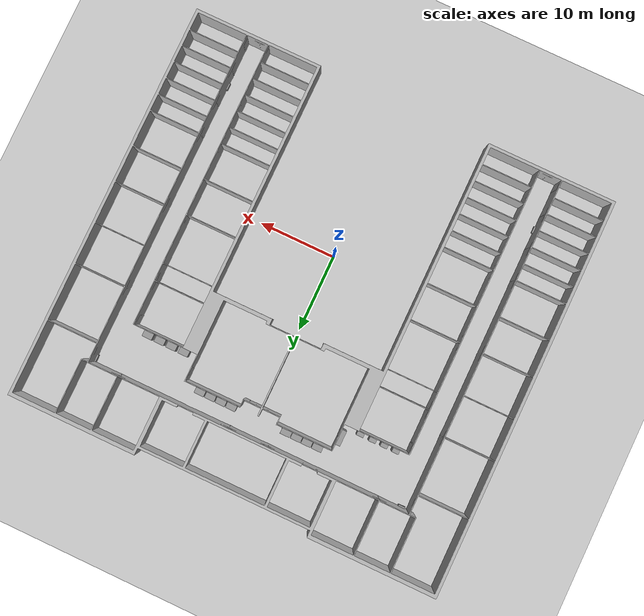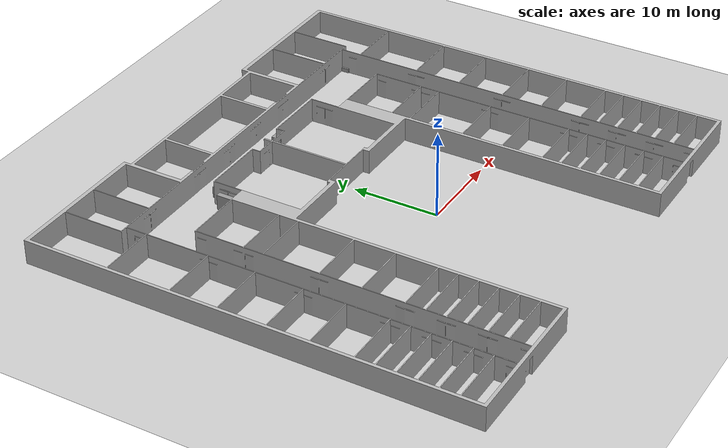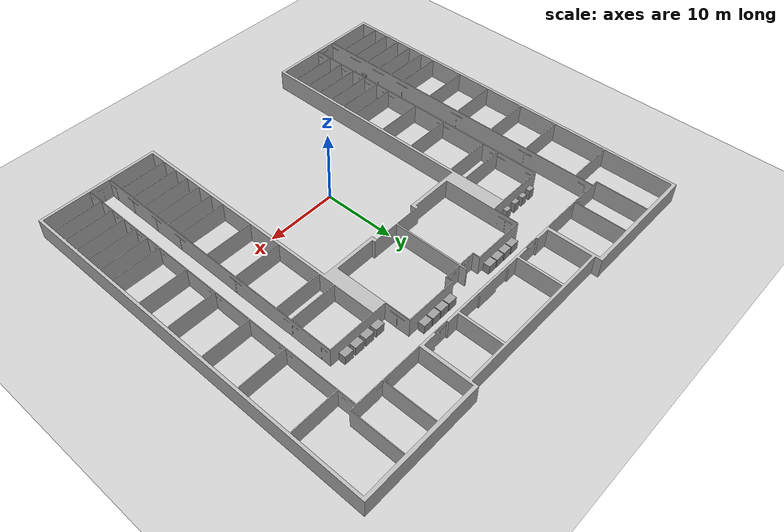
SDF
<sdf version="1.6">
 <world name="default">
  <light name="sun" type="directional">
   <pose>0 0 10 0 -0 0</pose>
   <diffuse>0.8 0.8 0.8 1</diffuse>
   <specular>0.2 0.2 0.2 1</specular>
   <attenuation>
    <range>1000</range>
    <constant>0.9</constant>
    <linear>0.01</linear>
    <quadratic>0.001</quadratic>
   </attenuation>
   <direction>-0.5 0.1 -0.9</direction>
  </light>
  <model name="ground_plane">
   <static>1</static>
   <link name="link">
    <collision name="collision">
     <geometry><plane><normal>0 0 1</normal><size>100 100</size></plane></geometry>
     <surface>
      <contact><collide_bitmask>65535</collide_bitmask></contact>
      <friction><ode><mu>100</mu><mu2>50</mu2></ode></friction>
     </surface>
    </collision>
    <visual name="visual">
     <cast_shadows>0</cast_shadows>
     <geometry><plane><normal>0 0 1</normal><size>100 100</size></plane></geometry>
     <material>
      <script><uri>file://media/materials/scripts/gazebo.material</uri><name>Gazebo/Grey</name></script>
     </material>
    </visual>
   </link>
  </model>
  <gravity>0 0 -9.8</gravity>
  <magnetic_field>6e-06 2.3e-05 -4.2e-05</magnetic_field>
  <atmosphere type="adiabatic"/>
  <physics name="default_physics" default="0" type="ode">
   <max_step_size>0.001</max_step_size>
   <real_time_factor>1</real_time_factor>
   <real_time_update_rate>1000</real_time_update_rate>
  </physics>
  <scene><ambient>0.4 0.4 0.4 1</ambient><background>0.7 0.7 0.7 1</background><shadows>1</shadows></scene>
  <spherical_coordinates>
   <surface_model>EARTH_WGS84</surface_model>
   <latitude_deg>0</latitude_deg>
   <longitude_deg>0</longitude_deg>
   <elevation>0</elevation>
   <heading_deg>0</heading_deg>
  </spherical_coordinates>
  <model name="cv2_collision">
   <link name="cv2">
    <inertial>
     <mass>1</mass>
     <inertia><ixx>1</ixx><ixy>0</ixy><ixz>0</ixz><iyy>1</iyy><iyz>0</iyz><izz>1</izz></inertia>
    </inertial>
    <visual name="ca_vignal_2">
     <geometry><mesh><uri>model://ca_vignal_2/meshes/plan.dae</uri><scale>1 1 1</scale></mesh></geometry>
     <material><shader type="pixel"><normal_map>__default__</normal_map></shader></material>
    </visual>
    <collision name="collision_1">
     <geometry>
      <mesh>
       <uri>/home/vlad/catkin_ws/src/ros_homework_2/turtlebot3_gazebo/ca_vignal_2/plan.dae</uri>
       <scale>1 1 1</scale>
      </mesh>
     </geometry>
     <surface>
      <friction>
       <ode><mu>1</mu><mu2>1</mu2><fdir1>0 0 0</fdir1><slip1>0</slip1><slip2>0</slip2></ode>
       <torsional>
        <coefficient>1</coefficient>
        <patch_radius>0</patch_radius>
        <surface_radius>0</surface_radius>
        <use_patch_radius>1</use_patch_radius>
        <ode><slip>0</slip></ode>
       </torsional>
      </friction>
      <bounce><restitution_coefficient>0</restitution_coefficient><threshold>1e+06</threshold></bounce>
      <contact>
       <collide_without_contact>0</collide_without_contact>
       <collide_without_contact_bitmask>1</collide_without_contact_bitmask>
       <collide_bitmask>1</collide_bitmask>
       <ode>
        <soft_cfm>0</soft_cfm>
        <soft_erp>0.2</soft_erp>
        <kp>1e+13</kp>
        <kd>1</kd>
        <max_vel>0.01</max_vel>
        <min_depth>0</min_depth>
       </ode>
       <bullet>
        <split_impulse>1</split_impulse>
        <split_impulse_penetration_threshold>-0.01</split_impulse_penetration_threshold>
        <soft_cfm>0</soft_cfm>
        <soft_erp>0.2</soft_erp>
        <kp>1e+13</kp>
        <kd>1</kd>
       </bullet>
      </contact>
     </surface>
    </collision>
   </link>
   <static>1</static>
   <pose>-13.8526 13.0465 0 0 -0 0</pose>
  </model>
  <model name="unit_box_1_clone">
   <link name="link">
    <inertial>
     <mass>20</mass>
     <inertia>
      <ixx>0.166667</ixx>
      <ixy>0</ixy>
      <ixz>0</ixz>
      <iyy>0.166667</iyy>
      <iyz>0</iyz>
      <izz>0.166667</izz>
     </inertia>
    </inertial>
    <visual name="visual">
     <geometry><box><size>0.9 0.2 0.5</size></box></geometry>
     <material>
      <script><name>Gazebo/Grey</name><uri>file://media/materials/scripts/gazebo.material</uri></script>
      <shader type="pixel"><normal_map>__default__</normal_map></shader>
      <ambient>0.3 0.3 0.3 1</ambient>
      <diffuse>0.7 0.7 0.7 1</diffuse>
      <specular>0.01 0.01 0.01 1</specular>
      <emissive>0 0 0 1</emissive>
     </material>
    </visual>
    <collision name="collision">
     <geometry><box><size>0.9 0.2 0.5</size></box></geometry>
     <surface>
      <friction>
       <ode><mu>1</mu><mu2>1</mu2><fdir1>0 0 0</fdir1><slip1>0</slip1><slip2>0</slip2></ode>
       <torsional>
        <coefficient>1</coefficient>
        <patch_radius>0</patch_radius>
        <surface_radius>0</surface_radius>
        <use_patch_radius>1</use_patch_radius>
        <ode><slip>0</slip></ode>
       </torsional>
      </friction>
      <bounce><restitution_coefficient>0</restitution_coefficient><threshold>1e+06</threshold></bounce>
      <contact>
       <collide_without_contact>0</collide_without_contact>
       <collide_without_contact_bitmask>1</collide_without_contact_bitmask>
       <collide_bitmask>1</collide_bitmask>
       <ode>
        <soft_cfm>0</soft_cfm>
        <soft_erp>0.2</soft_erp>
        <kp>1e+13</kp>
        <kd>1</kd>
        <max_vel>0.01</max_vel>
        <min_depth>0</min_depth>
       </ode>
       <bullet>
        <split_impulse>1</split_impulse>
        <split_impulse_penetration_threshold>-0.01</split_impulse_penetration_threshold>
        <soft_cfm>0</soft_cfm>
        <soft_erp>0.2</soft_erp>
        <kp>1e+13</kp>
        <kd>1</kd>
       </bullet>
      </contact>
     </surface>
    </collision>
   </link>
   <static>0</static>
   <pose>-21.1271 -13.6618 0.298411 9e-06 -1e-06 -1.5692</pose>
  </model>
  <model name="unit_box_clone_1_clone_clone_5_clone_clone_clone">
   <link name="link">
    <pose>0.136742 -0.055573 0 0 -0 0</pose>
    <inertial>
     <mass>20</mass>
     <inertia>
      <ixx>0.166667</ixx>
      <ixy>0</ixy>
      <ixz>0</ixz>
      <iyy>0.166667</iyy>
      <iyz>0</iyz>
      <izz>0.166667</izz>
     </inertia>
    </inertial>
    <visual name="visual">
     <geometry><box><size>0.9 0.6 1.9</size></box></geometry>
     <material>
      <script><name>Gazebo/Grey</name><uri>file://media/materials/scripts/gazebo.material</uri></script>
      <shader type="pixel"><normal_map>__default__</normal_map></shader>
      <ambient>0.3 0.3 0.3 1</ambient>
      <diffuse>0.7 0.7 0.7 1</diffuse>
      <specular>0.01 0.01 0.01 1</specular>
      <emissive>0 0 0 1</emissive>
     </material>
    </visual>
    <collision name="collision">
     <geometry><box><size>0.9 0.6 1.9</size></box></geometry>
     <surface>
      <friction>
       <ode><mu>1</mu><mu2>1</mu2><fdir1>0 0 0</fdir1><slip1>0</slip1><slip2>0</slip2></ode>
       <torsional>
        <coefficient>1</coefficient>
        <patch_radius>0</patch_radius>
        <surface_radius>0</surface_radius>
        <use_patch_radius>1</use_patch_radius>
        <ode><slip>0</slip></ode>
       </torsional>
      </friction>
      <bounce><restitution_coefficient>0</restitution_coefficient><threshold>1e+06</threshold></bounce>
      <contact>
       <collide_without_contact>0</collide_without_contact>
       <collide_without_contact_bitmask>1</collide_without_contact_bitmask>
       <collide_bitmask>1</collide_bitmask>
       <ode>
        <soft_cfm>0</soft_cfm>
        <soft_erp>0.2</soft_erp>
        <kp>1e+13</kp>
        <kd>1</kd>
        <max_vel>0.01</max_vel>
        <min_depth>0</min_depth>
       </ode>
       <bullet>
        <split_impulse>1</split_impulse>
        <split_impulse_penetration_threshold>-0.01</split_impulse_penetration_threshold>
        <soft_cfm>0</soft_cfm>
        <soft_erp>0.2</soft_erp>
        <kp>1e+13</kp>
        <kd>1</kd>
       </bullet>
      </contact>
     </surface>
    </collision>
   </link>
   <static>0</static>
   <pose>-17.0395 18.3665 0.500001 -7e-06 0 -3.6e-05</pose>
  </model>
  <model name="unit_box_clone_1_clone_clone_5_clone_clone_0">
   <link name="link">
    <pose>0.136742 -0.055573 0 0 -0 0</pose>
    <inertial>
     <mass>20</mass>
     <inertia>
      <ixx>0.166667</ixx>
      <ixy>0</ixy>
      <ixz>0</ixz>
      <iyy>0.166667</iyy>
      <iyz>0</iyz>
      <izz>0.166667</izz>
     </inertia>
    </inertial>
    <visual name="visual">
     <geometry><box><size>0.9 0.6 1.7</size></box></geometry>
     <material>
      <script><name>Gazebo/Grey</name><uri>file://media/materials/scripts/gazebo.material</uri></script>
      <shader type="pixel"><normal_map>__default__</normal_map></shader>
      <ambient>0.3 0.3 0.3 1</ambient>
      <diffuse>0.7 0.7 0.7 1</diffuse>
      <specular>0.01 0.01 0.01 1</specular>
      <emissive>0 0 0 1</emissive>
     </material>
    </visual>
    <collision name="collision">
     <geometry><box><size>0.9 0.6 1.7</size></box></geometry>
     <surface>
      <friction>
       <ode><mu>1</mu><mu2>1</mu2><fdir1>0 0 0</fdir1><slip1>0</slip1><slip2>0</slip2></ode>
       <torsional>
        <coefficient>1</coefficient>
        <patch_radius>0</patch_radius>
        <surface_radius>0</surface_radius>
        <use_patch_radius>1</use_patch_radius>
        <ode><slip>0</slip></ode>
       </torsional>
      </friction>
      <bounce><restitution_coefficient>0</restitution_coefficient><threshold>1e+06</threshold></bounce>
      <contact>
       <collide_without_contact>0</collide_without_contact>
       <collide_without_contact_bitmask>1</collide_without_contact_bitmask>
       <collide_bitmask>1</collide_bitmask>
       <ode>
        <soft_cfm>0</soft_cfm>
        <soft_erp>0.2</soft_erp>
        <kp>1e+13</kp>
        <kd>1</kd>
        <max_vel>0.01</max_vel>
        <min_depth>0</min_depth>
       </ode>
       <bullet>
        <split_impulse>1</split_impulse>
        <split_impulse_penetration_threshold>-0.01</split_impulse_penetration_threshold>
        <soft_cfm>0</soft_cfm>
        <soft_erp>0.2</soft_erp>
        <kp>1e+13</kp>
        <kd>1</kd>
       </bullet>
      </contact>
     </surface>
    </collision>
   </link>
   <static>0</static>
   <pose>-15.5077 18.3683 0.499994 0 -9e-06 -3.6e-05</pose>
  </model>
  <model name="unit_box_clone_1_clone_clone_5_clone_clone">
   <link name="link">
    <pose>0.136742 -0.055574 0 0 -0 0</pose>
    <inertial>
     <mass>20</mass>
     <inertia>
      <ixx>0.166667</ixx>
      <ixy>0</ixy>
      <ixz>0</ixz>
      <iyy>0.166667</iyy>
      <iyz>0</iyz>
      <izz>0.166667</izz>
     </inertia>
    </inertial>
    <visual name="visual">
     <geometry><box><size>0.9 0.6 1.9</size></box></geometry>
     <material>
      <script><name>Gazebo/Grey</name><uri>file://media/materials/scripts/gazebo.material</uri></script>
      <shader type="pixel"><normal_map>__default__</normal_map></shader>
      <ambient>0.3 0.3 0.3 1</ambient>
      <diffuse>0.7 0.7 0.7 1</diffuse>
      <specular>0.01 0.01 0.01 1</specular>
      <emissive>0 0 0 1</emissive>
     </material>
    </visual>
    <collision name="collision">
     <geometry><box><size>0.9 0.6 1.9</size></box></geometry>
     <surface>
      <friction>
       <ode><mu>1</mu><mu2>1</mu2><fdir1>0 0 0</fdir1><slip1>0</slip1><slip2>0</slip2></ode>
       <torsional>
        <coefficient>1</coefficient>
        <patch_radius>0</patch_radius>
        <surface_radius>0</surface_radius>
        <use_patch_radius>1</use_patch_radius>
        <ode><slip>0</slip></ode>
       </torsional>
      </friction>
      <bounce><restitution_coefficient>0</restitution_coefficient><threshold>1e+06</threshold></bounce>
      <contact>
       <collide_without_contact>0</collide_without_contact>
       <collide_without_contact_bitmask>1</collide_without_contact_bitmask>
       <collide_bitmask>1</collide_bitmask>
       <ode>
        <soft_cfm>0</soft_cfm>
        <soft_erp>0.2</soft_erp>
        <kp>1e+13</kp>
        <kd>1</kd>
        <max_vel>0.01</max_vel>
        <min_depth>0</min_depth>
       </ode>
       <bullet>
        <split_impulse>1</split_impulse>
        <split_impulse_penetration_threshold>-0.01</split_impulse_penetration_threshold>
        <soft_cfm>0</soft_cfm>
        <soft_erp>0.2</soft_erp>
        <kp>1e+13</kp>
        <kd>1</kd>
       </bullet>
      </contact>
     </surface>
    </collision>
   </link>
   <static>0</static>
   <pose>-13.9477 18.3756 0.500001 -9e-06 0 0.001855</pose>
  </model>
  <model name="unit_box_clone_1_clone_clone_5_clone">
   <link name="link">
    <pose>0.136742 -0.055573 0 0 -0 0</pose>
    <inertial>
     <mass>20</mass>
     <inertia>
      <ixx>0.166667</ixx>
      <ixy>0</ixy>
      <ixz>0</ixz>
      <iyy>0.166667</iyy>
      <iyz>0</iyz>
      <izz>0.166667</izz>
     </inertia>
    </inertial>
    <visual name="visual">
     <geometry><box><size>0.9 0.6 1.7</size></box></geometry>
     <material>
      <script><name>Gazebo/Grey</name><uri>file://media/materials/scripts/gazebo.material</uri></script>
      <shader type="pixel"><normal_map>__default__</normal_map></shader>
      <ambient>0.3 0.3 0.3 1</ambient>
      <diffuse>0.7 0.7 0.7 1</diffuse>
      <specular>0.01 0.01 0.01 1</specular>
      <emissive>0 0 0 1</emissive>
     </material>
    </visual>
    <collision name="collision">
     <geometry><box><size>0.9 0.6 1.7</size></box></geometry>
     <surface>
      <friction>
       <ode><mu>1</mu><mu2>1</mu2><fdir1>0 0 0</fdir1><slip1>0</slip1><slip2>0</slip2></ode>
       <torsional>
        <coefficient>1</coefficient>
        <patch_radius>0</patch_radius>
        <surface_radius>0</surface_radius>
        <use_patch_radius>1</use_patch_radius>
        <ode><slip>0</slip></ode>
       </torsional>
      </friction>
      <bounce><restitution_coefficient>0</restitution_coefficient><threshold>1e+06</threshold></bounce>
      <contact>
       <collide_without_contact>0</collide_without_contact>
       <collide_without_contact_bitmask>1</collide_without_contact_bitmask>
       <collide_bitmask>1</collide_bitmask>
       <ode>
        <soft_cfm>0</soft_cfm>
        <soft_erp>0.2</soft_erp>
        <kp>1e+13</kp>
        <kd>1</kd>
        <max_vel>0.01</max_vel>
        <min_depth>0</min_depth>
       </ode>
       <bullet>
        <split_impulse>1</split_impulse>
        <split_impulse_penetration_threshold>-0.01</split_impulse_penetration_threshold>
        <soft_cfm>0</soft_cfm>
        <soft_erp>0.2</soft_erp>
        <kp>1e+13</kp>
        <kd>1</kd>
       </bullet>
      </contact>
     </surface>
    </collision>
   </link>
   <static>0</static>
   <pose>-12.315 18.3671 0.500001 -9e-06 0 0.005452</pose>
  </model>
  <model name="unit_box_0">
   <link name="link">
    <pose>0 0 0 0 0 -1.57079</pose>
    <inertial>
     <mass>30</mass>
     <inertia>
      <ixx>0.166667</ixx>
      <ixy>0</ixy>
      <ixz>0</ixz>
      <iyy>0.166667</iyy>
      <iyz>0</iyz>
      <izz>0.166667</izz>
     </inertia>
    </inertial>
    <visual name="visual">
     <geometry><box><size>2 0.6 2.5</size></box></geometry>
     <material>
      <script><name>Gazebo/Grey</name><uri>file://media/materials/scripts/gazebo.material</uri></script>
      <shader type="pixel"><normal_map>__default__</normal_map></shader>
      <ambient>0.3 0.3 0.3 1</ambient>
      <diffuse>0.7 0.7 0.7 1</diffuse>
      <specular>0.01 0.01 0.01 1</specular>
      <emissive>0 0 0 1</emissive>
     </material>
    </visual>
    <collision name="collision">
     <geometry><box><size>2 0.6 2.5</size></box></geometry>
     <surface>
      <friction>
       <ode><mu>1</mu><mu2>1</mu2><fdir1>0 0 0</fdir1><slip1>0</slip1><slip2>0</slip2></ode>
       <torsional>
        <coefficient>1</coefficient>
        <patch_radius>0</patch_radius>
        <surface_radius>0</surface_radius>
        <use_patch_radius>1</use_patch_radius>
        <ode><slip>0</slip></ode>
       </torsional>
      </friction>
      <bounce><restitution_coefficient>0</restitution_coefficient><threshold>1e+06</threshold></bounce>
      <contact>
       <collide_without_contact>0</collide_without_contact>
       <collide_without_contact_bitmask>1</collide_without_contact_bitmask>
       <collide_bitmask>1</collide_bitmask>
       <ode>
        <soft_cfm>0</soft_cfm>
        <soft_erp>0.2</soft_erp>
        <kp>1e+13</kp>
        <kd>1</kd>
        <max_vel>0.01</max_vel>
        <min_depth>0</min_depth>
       </ode>
       <bullet>
        <split_impulse>1</split_impulse>
        <split_impulse_penetration_threshold>-0.01</split_impulse_penetration_threshold>
        <soft_cfm>0</soft_cfm>
        <soft_erp>0.2</soft_erp>
        <kp>1e+13</kp>
        <kd>1</kd>
       </bullet>
      </contact>
     </surface>
    </collision>
   </link>
   <static>0</static>
   <pose>-10.1866 19.6909 0.499997 3e-06 -2e-06 -0.001849</pose>
  </model>
  <model name="unit_box_1">
   <link name="link">
    <pose>1e-06 -0.223653 0 0 -0 0</pose>
    <inertial>
     <mass>20</mass>
     <inertia>
      <ixx>0.166667</ixx>
      <ixy>0</ixy>
      <ixz>0</ixz>
      <iyy>0.166667</iyy>
      <iyz>0</iyz>
      <izz>0.166667</izz>
     </inertia>
    </inertial>
    <visual name="visual">
     <geometry><box><size>0.9 0.2 0.5</size></box></geometry>
     <material>
      <script><name>Gazebo/Grey</name><uri>file://media/materials/scripts/gazebo.material</uri></script>
      <shader type="pixel"><normal_map>__default__</normal_map></shader>
      <ambient>0.3 0.3 0.3 1</ambient>
      <diffuse>0.7 0.7 0.7 1</diffuse>
      <specular>0.01 0.01 0.01 1</specular>
      <emissive>0 0 0 1</emissive>
     </material>
    </visual>
    <collision name="collision">
     <geometry><box><size>0.9 0.2 0.5</size></box></geometry>
     <surface>
      <friction>
       <ode><mu>1</mu><mu2>1</mu2><fdir1>0 0 0</fdir1><slip1>0</slip1><slip2>0</slip2></ode>
       <torsional>
        <coefficient>1</coefficient>
        <patch_radius>0</patch_radius>
        <surface_radius>0</surface_radius>
        <use_patch_radius>1</use_patch_radius>
        <ode><slip>0</slip></ode>
       </torsional>
      </friction>
      <bounce><restitution_coefficient>0</restitution_coefficient><threshold>1e+06</threshold></bounce>
      <contact>
       <collide_without_contact>0</collide_without_contact>
       <collide_without_contact_bitmask>1</collide_without_contact_bitmask>
       <collide_bitmask>1</collide_bitmask>
       <ode>
        <soft_cfm>0</soft_cfm>
        <soft_erp>0.2</soft_erp>
        <kp>1e+13</kp>
        <kd>1</kd>
        <max_vel>0.01</max_vel>
        <min_depth>0</min_depth>
       </ode>
       <bullet>
        <split_impulse>1</split_impulse>
        <split_impulse_penetration_threshold>-0.01</split_impulse_penetration_threshold>
        <soft_cfm>0</soft_cfm>
        <soft_erp>0.2</soft_erp>
        <kp>1e+13</kp>
        <kd>1</kd>
       </bullet>
      </contact>
     </surface>
    </collision>
   </link>
   <static>0</static>
   <pose>-20.5268 23.997 0.249744 3e-06 -0.00057 3.13796</pose>
  </model>
  <model name="unit_box_clone_1_clone_clone_5">
   <link name="link">
    <inertial>
     <mass>15</mass>
     <inertia>
      <ixx>0.166667</ixx>
      <ixy>0</ixy>
      <ixz>0</ixz>
      <iyy>0.166667</iyy>
      <iyz>0</iyz>
      <izz>0.166667</izz>
     </inertia>
    </inertial>
    <visual name="visual">
     <geometry><box><size>1.3 0.9 1.5</size></box></geometry>
     <material>
      <script><name>Gazebo/Grey</name><uri>file://media/materials/scripts/gazebo.material</uri></script>
      <shader type="pixel"><normal_map>__default__</normal_map></shader>
      <ambient>0.3 0.3 0.3 1</ambient>
      <diffuse>0.7 0.7 0.7 1</diffuse>
      <specular>0.01 0.01 0.01 1</specular>
      <emissive>0 0 0 1</emissive>
     </material>
    </visual>
    <collision name="collision">
     <geometry><box><size>1.3 0.9 1.5</size></box></geometry>
     <surface>
      <friction>
       <ode><mu>1</mu><mu2>1</mu2><fdir1>0 0 0</fdir1><slip1>0</slip1><slip2>0</slip2></ode>
       <torsional>
        <coefficient>1</coefficient>
        <patch_radius>0</patch_radius>
        <surface_radius>0</surface_radius>
        <use_patch_radius>1</use_patch_radius>
        <ode><slip>0</slip></ode>
       </torsional>
      </friction>
      <bounce><restitution_coefficient>0</restitution_coefficient><threshold>1e+06</threshold></bounce>
      <contact>
       <collide_without_contact>0</collide_without_contact>
       <collide_without_contact_bitmask>1</collide_without_contact_bitmask>
       <collide_bitmask>1</collide_bitmask>
       <ode>
        <soft_cfm>0</soft_cfm>
        <soft_erp>0.2</soft_erp>
        <kp>1e+13</kp>
        <kd>1</kd>
        <max_vel>0.01</max_vel>
        <min_depth>0</min_depth>
       </ode>
       <bullet>
        <split_impulse>1</split_impulse>
        <split_impulse_penetration_threshold>-0.01</split_impulse_penetration_threshold>
        <soft_cfm>0</soft_cfm>
        <soft_erp>0.2</soft_erp>
        <kp>1e+13</kp>
        <kd>1</kd>
       </bullet>
      </contact>
     </surface>
    </collision>
   </link>
   <static>0</static>
   <pose>-8.11337 21.9664 0.499997 3e-06 -0 0</pose>
  </model>
  <model name="unit_box_clone_1_clone_clone_4">
   <link name="link">
    <inertial>
     <mass>15</mass>
     <inertia>
      <ixx>0.166667</ixx>
      <ixy>0</ixy>
      <ixz>0</ixz>
      <iyy>0.166667</iyy>
      <iyz>0</iyz>
      <izz>0.166667</izz>
     </inertia>
    </inertial>
    <visual name="visual">
     <geometry><box><size>1.3 0.9 1.5</size></box></geometry>
     <material>
      <script><name>Gazebo/Grey</name><uri>file://media/materials/scripts/gazebo.material</uri></script>
      <shader type="pixel"><normal_map>__default__</normal_map></shader>
      <ambient>0.3 0.3 0.3 1</ambient>
      <diffuse>0.7 0.7 0.7 1</diffuse>
      <specular>0.01 0.01 0.01 1</specular>
      <emissive>0 0 0 1</emissive>
     </material>
    </visual>
    <collision name="collision">
     <geometry><box><size>1.3 0.9 1.5</size></box></geometry>
     <surface>
      <friction>
       <ode><mu>1</mu><mu2>1</mu2><fdir1>0 0 0</fdir1><slip1>0</slip1><slip2>0</slip2></ode>
       <torsional>
        <coefficient>1</coefficient>
        <patch_radius>0</patch_radius>
        <surface_radius>0</surface_radius>
        <use_patch_radius>1</use_patch_radius>
        <ode><slip>0</slip></ode>
       </torsional>
      </friction>
      <bounce><restitution_coefficient>0</restitution_coefficient><threshold>1e+06</threshold></bounce>
      <contact>
       <collide_without_contact>0</collide_without_contact>
       <collide_without_contact_bitmask>1</collide_without_contact_bitmask>
       <collide_bitmask>1</collide_bitmask>
       <ode>
        <soft_cfm>0</soft_cfm>
        <soft_erp>0.2</soft_erp>
        <kp>1e+13</kp>
        <kd>1</kd>
        <max_vel>0.01</max_vel>
        <min_depth>0</min_depth>
       </ode>
       <bullet>
        <split_impulse>1</split_impulse>
        <split_impulse_penetration_threshold>-0.01</split_impulse_penetration_threshold>
        <soft_cfm>0</soft_cfm>
        <soft_erp>0.2</soft_erp>
        <kp>1e+13</kp>
        <kd>1</kd>
       </bullet>
      </contact>
     </surface>
    </collision>
   </link>
   <static>0</static>
   <pose>-6.71217 21.9666 0.5 0 3e-06 2e-06</pose>
  </model>
  <model name="unit_box_clone_1_clone_clone_3">
   <link name="link">
    <inertial>
     <mass>15</mass>
     <inertia>
      <ixx>0.166667</ixx>
      <ixy>0</ixy>
      <ixz>0</ixz>
      <iyy>0.166667</iyy>
      <iyz>0</iyz>
      <izz>0.166667</izz>
     </inertia>
    </inertial>
    <visual name="visual">
     <geometry><box><size>1.3 0.9 1.5</size></box></geometry>
     <material>
      <script><name>Gazebo/Grey</name><uri>file://media/materials/scripts/gazebo.material</uri></script>
      <shader type="pixel"><normal_map>__default__</normal_map></shader>
      <ambient>0.3 0.3 0.3 1</ambient>
      <diffuse>0.7 0.7 0.7 1</diffuse>
      <specular>0.01 0.01 0.01 1</specular>
      <emissive>0 0 0 1</emissive>
     </material>
    </visual>
    <collision name="collision">
     <geometry><box><size>1.3 0.9 1.5</size></box></geometry>
     <surface>
      <friction>
       <ode><mu>1</mu><mu2>1</mu2><fdir1>0 0 0</fdir1><slip1>0</slip1><slip2>0</slip2></ode>
       <torsional>
        <coefficient>1</coefficient>
        <patch_radius>0</patch_radius>
        <surface_radius>0</surface_radius>
        <use_patch_radius>1</use_patch_radius>
        <ode><slip>0</slip></ode>
       </torsional>
      </friction>
      <bounce><restitution_coefficient>0</restitution_coefficient><threshold>1e+06</threshold></bounce>
      <contact>
       <collide_without_contact>0</collide_without_contact>
       <collide_without_contact_bitmask>1</collide_without_contact_bitmask>
       <collide_bitmask>1</collide_bitmask>
       <ode>
        <soft_cfm>0</soft_cfm>
        <soft_erp>0.2</soft_erp>
        <kp>1e+13</kp>
        <kd>1</kd>
        <max_vel>0.01</max_vel>
        <min_depth>0</min_depth>
       </ode>
       <bullet>
        <split_impulse>1</split_impulse>
        <split_impulse_penetration_threshold>-0.01</split_impulse_penetration_threshold>
        <soft_cfm>0</soft_cfm>
        <soft_erp>0.2</soft_erp>
        <kp>1e+13</kp>
        <kd>1</kd>
       </bullet>
      </contact>
     </surface>
    </collision>
   </link>
   <static>0</static>
   <pose>-5.29537 21.9665 0.499997 0 3e-06 8e-06</pose>
  </model>
  <model name="unit_box_clone_1_clone_clone_2">
   <link name="link">
    <inertial>
     <mass>15</mass>
     <inertia>
      <ixx>0.166667</ixx>
      <ixy>0</ixy>
      <ixz>0</ixz>
      <iyy>0.166667</iyy>
      <iyz>0</iyz>
      <izz>0.166667</izz>
     </inertia>
    </inertial>
    <visual name="visual">
     <geometry><box><size>1.3 0.9 1.5</size></box></geometry>
     <material>
      <script><name>Gazebo/Grey</name><uri>file://media/materials/scripts/gazebo.material</uri></script>
      <shader type="pixel"><normal_map>__default__</normal_map></shader>
      <ambient>0.3 0.3 0.3 1</ambient>
      <diffuse>0.7 0.7 0.7 1</diffuse>
      <specular>0.01 0.01 0.01 1</specular>
      <emissive>0 0 0 1</emissive>
     </material>
    </visual>
    <collision name="collision">
     <geometry><box><size>1.3 0.9 1.5</size></box></geometry>
     <surface>
      <friction>
       <ode><mu>1</mu><mu2>1</mu2><fdir1>0 0 0</fdir1><slip1>0</slip1><slip2>0</slip2></ode>
       <torsional>
        <coefficient>1</coefficient>
        <patch_radius>0</patch_radius>
        <surface_radius>0</surface_radius>
        <use_patch_radius>1</use_patch_radius>
        <ode><slip>0</slip></ode>
       </torsional>
      </friction>
      <bounce><restitution_coefficient>0</restitution_coefficient><threshold>1e+06</threshold></bounce>
      <contact>
       <collide_without_contact>0</collide_without_contact>
       <collide_without_contact_bitmask>1</collide_without_contact_bitmask>
       <collide_bitmask>1</collide_bitmask>
       <ode>
        <soft_cfm>0</soft_cfm>
        <soft_erp>0.2</soft_erp>
        <kp>1e+13</kp>
        <kd>1</kd>
        <max_vel>0.01</max_vel>
        <min_depth>0</min_depth>
       </ode>
       <bullet>
        <split_impulse>1</split_impulse>
        <split_impulse_penetration_threshold>-0.01</split_impulse_penetration_threshold>
        <soft_cfm>0</soft_cfm>
        <soft_erp>0.2</soft_erp>
        <kp>1e+13</kp>
        <kd>1</kd>
       </bullet>
      </contact>
     </surface>
    </collision>
   </link>
   <static>0</static>
   <pose>-3.89403 21.9665 0.499997 0 3e-06 8e-06</pose>
  </model>
  <model name="unit_box_clone_1_clone_clone_1">
   <link name="link">
    <inertial>
     <mass>15</mass>
     <inertia>
      <ixx>0.166667</ixx>
      <ixy>0</ixy>
      <ixz>0</ixz>
      <iyy>0.166667</iyy>
      <iyz>0</iyz>
      <izz>0.166667</izz>
     </inertia>
    </inertial>
    <visual name="visual">
     <geometry><box><size>1.3 0.9 1.5</size></box></geometry>
     <material>
      <script><name>Gazebo/Grey</name><uri>file://media/materials/scripts/gazebo.material</uri></script>
      <shader type="pixel"><normal_map>__default__</normal_map></shader>
      <ambient>0.3 0.3 0.3 1</ambient>
      <diffuse>0.7 0.7 0.7 1</diffuse>
      <specular>0.01 0.01 0.01 1</specular>
      <emissive>0 0 0 1</emissive>
     </material>
    </visual>
    <collision name="collision">
     <geometry><box><size>1.3 0.9 1.5</size></box></geometry>
     <surface>
      <friction>
       <ode><mu>1</mu><mu2>1</mu2><fdir1>0 0 0</fdir1><slip1>0</slip1><slip2>0</slip2></ode>
       <torsional>
        <coefficient>1</coefficient>
        <patch_radius>0</patch_radius>
        <surface_radius>0</surface_radius>
        <use_patch_radius>1</use_patch_radius>
        <ode><slip>0</slip></ode>
       </torsional>
      </friction>
      <bounce><restitution_coefficient>0</restitution_coefficient><threshold>1e+06</threshold></bounce>
      <contact>
       <collide_without_contact>0</collide_without_contact>
       <collide_without_contact_bitmask>1</collide_without_contact_bitmask>
       <collide_bitmask>1</collide_bitmask>
       <ode>
        <soft_cfm>0</soft_cfm>
        <soft_erp>0.2</soft_erp>
        <kp>1e+13</kp>
        <kd>1</kd>
        <max_vel>0.01</max_vel>
        <min_depth>0</min_depth>
       </ode>
       <bullet>
        <split_impulse>1</split_impulse>
        <split_impulse_penetration_threshold>-0.01</split_impulse_penetration_threshold>
        <soft_cfm>0</soft_cfm>
        <soft_erp>0.2</soft_erp>
        <kp>1e+13</kp>
        <kd>1</kd>
       </bullet>
      </contact>
     </surface>
    </collision>
   </link>
   <static>0</static>
   <pose>3.49235 21.9665 0.499997 0 -3e-06 -7e-06</pose>
  </model>
  <model name="unit_box_clone_1_clone_clone_0">
   <link name="link">
    <inertial>
     <mass>15</mass>
     <inertia>
      <ixx>0.166667</ixx>
      <ixy>0</ixy>
      <ixz>0</ixz>
      <iyy>0.166667</iyy>
      <iyz>0</iyz>
      <izz>0.166667</izz>
     </inertia>
    </inertial>
    <visual name="visual">
     <geometry><box><size>1.3 0.9 1.5</size></box></geometry>
     <material>
      <script><name>Gazebo/Grey</name><uri>file://media/materials/scripts/gazebo.material</uri></script>
      <shader type="pixel"><normal_map>__default__</normal_map></shader>
      <ambient>0.3 0.3 0.3 1</ambient>
      <diffuse>0.7 0.7 0.7 1</diffuse>
      <specular>0.01 0.01 0.01 1</specular>
      <emissive>0 0 0 1</emissive>
     </material>
    </visual>
    <collision name="collision">
     <geometry><box><size>1.3 0.9 1.5</size></box></geometry>
     <surface>
      <friction>
       <ode><mu>1</mu><mu2>1</mu2><fdir1>0 0 0</fdir1><slip1>0</slip1><slip2>0</slip2></ode>
       <torsional>
        <coefficient>1</coefficient>
        <patch_radius>0</patch_radius>
        <surface_radius>0</surface_radius>
        <use_patch_radius>1</use_patch_radius>
        <ode><slip>0</slip></ode>
       </torsional>
      </friction>
      <bounce><restitution_coefficient>0</restitution_coefficient><threshold>1e+06</threshold></bounce>
      <contact>
       <collide_without_contact>0</collide_without_contact>
       <collide_without_contact_bitmask>1</collide_without_contact_bitmask>
       <collide_bitmask>1</collide_bitmask>
       <ode>
        <soft_cfm>0</soft_cfm>
        <soft_erp>0.2</soft_erp>
        <kp>1e+13</kp>
        <kd>1</kd>
        <max_vel>0.01</max_vel>
        <min_depth>0</min_depth>
       </ode>
       <bullet>
        <split_impulse>1</split_impulse>
        <split_impulse_penetration_threshold>-0.01</split_impulse_penetration_threshold>
        <soft_cfm>0</soft_cfm>
        <soft_erp>0.2</soft_erp>
        <kp>1e+13</kp>
        <kd>1</kd>
       </bullet>
      </contact>
     </surface>
    </collision>
   </link>
   <static>0</static>
   <pose>4.89672 21.9665 0.499997 0 -3e-06 -7e-06</pose>
  </model>
  <model name="unit_box_clone_1_clone_clone">
   <link name="link">
    <inertial>
     <mass>15</mass>
     <inertia>
      <ixx>0.166667</ixx>
      <ixy>0</ixy>
      <ixz>0</ixz>
      <iyy>0.166667</iyy>
      <iyz>0</iyz>
      <izz>0.166667</izz>
     </inertia>
    </inertial>
    <visual name="visual">
     <geometry><box><size>1.3 0.9 1.5</size></box></geometry>
     <material>
      <script><name>Gazebo/Grey</name><uri>file://media/materials/scripts/gazebo.material</uri></script>
      <shader type="pixel"><normal_map>__default__</normal_map></shader>
      <ambient>0.3 0.3 0.3 1</ambient>
      <diffuse>0.7 0.7 0.7 1</diffuse>
      <specular>0.01 0.01 0.01 1</specular>
      <emissive>0 0 0 1</emissive>
     </material>
    </visual>
    <collision name="collision">
     <geometry><box><size>1.3 0.9 1.5</size></box></geometry>
     <surface>
      <friction>
       <ode><mu>1</mu><mu2>1</mu2><fdir1>0 0 0</fdir1><slip1>0</slip1><slip2>0</slip2></ode>
       <torsional>
        <coefficient>1</coefficient>
        <patch_radius>0</patch_radius>
        <surface_radius>0</surface_radius>
        <use_patch_radius>1</use_patch_radius>
        <ode><slip>0</slip></ode>
       </torsional>
      </friction>
      <bounce><restitution_coefficient>0</restitution_coefficient><threshold>1e+06</threshold></bounce>
      <contact>
       <collide_without_contact>0</collide_without_contact>
       <collide_without_contact_bitmask>1</collide_without_contact_bitmask>
       <collide_bitmask>1</collide_bitmask>
       <ode>
        <soft_cfm>0</soft_cfm>
        <soft_erp>0.2</soft_erp>
        <kp>1e+13</kp>
        <kd>1</kd>
        <max_vel>0.01</max_vel>
        <min_depth>0</min_depth>
       </ode>
       <bullet>
        <split_impulse>1</split_impulse>
        <split_impulse_penetration_threshold>-0.01</split_impulse_penetration_threshold>
        <soft_cfm>0</soft_cfm>
        <soft_erp>0.2</soft_erp>
        <kp>1e+13</kp>
        <kd>1</kd>
       </bullet>
      </contact>
     </surface>
    </collision>
   </link>
   <static>0</static>
   <pose>6.308 21.9664 0.5 0 -3e-06 1e-06</pose>
  </model>
  <model name="unit_box_clone_1_cloneù">
   <link name="link">
    <inertial>
     <mass>15</mass>
     <inertia>
      <ixx>0.166667</ixx>
      <ixy>0</ixy>
      <ixz>0</ixz>
      <iyy>0.166667</iyy>
      <iyz>0</iyz>
      <izz>0.166667</izz>
     </inertia>
    </inertial>
    <visual name="visual">
     <geometry><box><size>1.3 0.9 1.5</size></box></geometry>
     <material>
      <script><name>Gazebo/Grey</name><uri>file://media/materials/scripts/gazebo.material</uri></script>
      <shader type="pixel"><normal_map>__default__</normal_map></shader>
      <ambient>0.3 0.3 0.3 1</ambient>
      <diffuse>0.7 0.7 0.7 1</diffuse>
      <specular>0.01 0.01 0.01 1</specular>
      <emissive>0 0 0 1</emissive>
     </material>
    </visual>
    <collision name="collision">
     <geometry><box><size>1.3 0.9 1.5</size></box></geometry>
     <surface>
      <friction>
       <ode><mu>1</mu><mu2>1</mu2><fdir1>0 0 0</fdir1><slip1>0</slip1><slip2>0</slip2></ode>
       <torsional>
        <coefficient>1</coefficient>
        <patch_radius>0</patch_radius>
        <surface_radius>0</surface_radius>
        <use_patch_radius>1</use_patch_radius>
        <ode><slip>0</slip></ode>
       </torsional>
      </friction>
      <bounce><restitution_coefficient>0</restitution_coefficient><threshold>1e+06</threshold></bounce>
      <contact>
       <collide_without_contact>0</collide_without_contact>
       <collide_without_contact_bitmask>1</collide_without_contact_bitmask>
       <collide_bitmask>1</collide_bitmask>
       <ode>
        <soft_cfm>0</soft_cfm>
        <soft_erp>0.2</soft_erp>
        <kp>1e+13</kp>
        <kd>1</kd>
        <max_vel>0.01</max_vel>
        <min_depth>0</min_depth>
       </ode>
       <bullet>
        <split_impulse>1</split_impulse>
        <split_impulse_penetration_threshold>-0.01</split_impulse_penetration_threshold>
        <soft_cfm>0</soft_cfm>
        <soft_erp>0.2</soft_erp>
        <kp>1e+13</kp>
        <kd>1</kd>
       </bullet>
      </contact>
     </surface>
    </collision>
   </link>
   <static>0</static>
   <pose>7.72501 21.9665 0.499997 0 3e-06 -2e-06</pose>
  </model>
  <model name="unit_box_clone_1">
   <link name="link">
    <inertial>
     <mass>15</mass>
     <inertia>
      <ixx>0.166667</ixx>
      <ixy>0</ixy>
      <ixz>0</ixz>
      <iyy>0.166667</iyy>
      <iyz>0</iyz>
      <izz>0.166667</izz>
     </inertia>
    </inertial>
    <visual name="visual">
     <geometry><box><size>1.3 0.9 1.5</size></box></geometry>
     <material>
      <script><name>Gazebo/Grey</name><uri>file://media/materials/scripts/gazebo.material</uri></script>
      <shader type="pixel"><normal_map>__default__</normal_map></shader>
      <ambient>0.3 0.3 0.3 1</ambient>
      <diffuse>0.7 0.7 0.7 1</diffuse>
      <specular>0.01 0.01 0.01 1</specular>
      <emissive>0 0 0 1</emissive>
     </material>
    </visual>
    <collision name="collision">
     <geometry><box><size>1.3 0.9 1.5</size></box></geometry>
     <surface>
      <friction>
       <ode><mu>1</mu><mu2>1</mu2><fdir1>0 0 0</fdir1><slip1>0</slip1><slip2>0</slip2></ode>
       <torsional>
        <coefficient>1</coefficient>
        <patch_radius>0</patch_radius>
        <surface_radius>0</surface_radius>
        <use_patch_radius>1</use_patch_radius>
        <ode><slip>0</slip></ode>
       </torsional>
      </friction>
      <bounce><restitution_coefficient>0</restitution_coefficient><threshold>1e+06</threshold></bounce>
      <contact>
       <collide_without_contact>0</collide_without_contact>
       <collide_without_contact_bitmask>1</collide_without_contact_bitmask>
       <collide_bitmask>1</collide_bitmask>
       <ode>
        <soft_cfm>0</soft_cfm>
        <soft_erp>0.2</soft_erp>
        <kp>1e+13</kp>
        <kd>1</kd>
        <max_vel>0.01</max_vel>
        <min_depth>0</min_depth>
       </ode>
       <bullet>
        <split_impulse>1</split_impulse>
        <split_impulse_penetration_threshold>-0.01</split_impulse_penetration_threshold>
        <soft_cfm>0</soft_cfm>
        <soft_erp>0.2</soft_erp>
        <kp>1e+13</kp>
        <kd>1</kd>
       </bullet>
      </contact>
     </surface>
    </collision>
   </link>
   <static>0</static>
   <pose>11.6201 18.4537 0.5 3e-06 -0 0</pose>
  </model>
  <model name="unit_box_clone_0">
   <link name="link">
    <inertial>
     <mass>15</mass>
     <inertia>
      <ixx>0.166667</ixx>
      <ixy>0</ixy>
      <ixz>0</ixz>
      <iyy>0.166667</iyy>
      <iyz>0</iyz>
      <izz>0.166667</izz>
     </inertia>
    </inertial>
    <visual name="visual">
     <geometry><box><size>1.3 0.9 1.5</size></box></geometry>
     <material>
      <script><name>Gazebo/Grey</name><uri>file://media/materials/scripts/gazebo.material</uri></script>
      <shader type="pixel"><normal_map>__default__</normal_map></shader>
      <ambient>0.3 0.3 0.3 1</ambient>
      <diffuse>0.7 0.7 0.7 1</diffuse>
      <specular>0.01 0.01 0.01 1</specular>
      <emissive>0 0 0 1</emissive>
     </material>
    </visual>
    <collision name="collision">
     <geometry><box><size>1.3 0.9 1.5</size></box></geometry>
     <surface>
      <friction>
       <ode><mu>1</mu><mu2>1</mu2><fdir1>0 0 0</fdir1><slip1>0</slip1><slip2>0</slip2></ode>
       <torsional>
        <coefficient>1</coefficient>
        <patch_radius>0</patch_radius>
        <surface_radius>0</surface_radius>
        <use_patch_radius>1</use_patch_radius>
        <ode><slip>0</slip></ode>
       </torsional>
      </friction>
      <bounce><restitution_coefficient>0</restitution_coefficient><threshold>1e+06</threshold></bounce>
      <contact>
       <collide_without_contact>0</collide_without_contact>
       <collide_without_contact_bitmask>1</collide_without_contact_bitmask>
       <collide_bitmask>1</collide_bitmask>
       <ode>
        <soft_cfm>0</soft_cfm>
        <soft_erp>0.2</soft_erp>
        <kp>1e+13</kp>
        <kd>1</kd>
        <max_vel>0.01</max_vel>
        <min_depth>0</min_depth>
       </ode>
       <bullet>
        <split_impulse>1</split_impulse>
        <split_impulse_penetration_threshold>-0.01</split_impulse_penetration_threshold>
        <soft_cfm>0</soft_cfm>
        <soft_erp>0.2</soft_erp>
        <kp>1e+13</kp>
        <kd>1</kd>
       </bullet>
      </contact>
     </surface>
    </collision>
   </link>
   <static>0</static>
   <pose>13.2808 18.4486 0.5 3e-06 -0 0</pose>
  </model>
  <model name="unit_box_clone">
   <link name="link">
    <inertial>
     <mass>15</mass>
     <inertia>
      <ixx>0.166667</ixx>
      <ixy>0</ixy>
      <ixz>0</ixz>
      <iyy>0.166667</iyy>
      <iyz>0</iyz>
      <izz>0.166667</izz>
     </inertia>
    </inertial>
    <visual name="visual">
     <geometry><box><size>1.3 0.9 1.5</size></box></geometry>
     <material>
      <script><name>Gazebo/Grey</name><uri>file://media/materials/scripts/gazebo.material</uri></script>
      <shader type="pixel"><normal_map>__default__</normal_map></shader>
      <ambient>0.3 0.3 0.3 1</ambient>
      <diffuse>0.7 0.7 0.7 1</diffuse>
      <specular>0.01 0.01 0.01 1</specular>
      <emissive>0 0 0 1</emissive>
     </material>
    </visual>
    <collision name="collision">
     <geometry><box><size>1.3 0.9 1.5</size></box></geometry>
     <surface>
      <friction>
       <ode><mu>1</mu><mu2>1</mu2><fdir1>0 0 0</fdir1><slip1>0</slip1><slip2>0</slip2></ode>
       <torsional>
        <coefficient>1</coefficient>
        <patch_radius>0</patch_radius>
        <surface_radius>0</surface_radius>
        <use_patch_radius>1</use_patch_radius>
        <ode><slip>0</slip></ode>
       </torsional>
      </friction>
      <bounce><restitution_coefficient>0</restitution_coefficient><threshold>1e+06</threshold></bounce>
      <contact>
       <collide_without_contact>0</collide_without_contact>
       <collide_without_contact_bitmask>1</collide_without_contact_bitmask>
       <collide_bitmask>1</collide_bitmask>
       <ode>
        <soft_cfm>0</soft_cfm>
        <soft_erp>0.2</soft_erp>
        <kp>1e+13</kp>
        <kd>1</kd>
        <max_vel>0.01</max_vel>
        <min_depth>0</min_depth>
       </ode>
       <bullet>
        <split_impulse>1</split_impulse>
        <split_impulse_penetration_threshold>-0.01</split_impulse_penetration_threshold>
        <soft_cfm>0</soft_cfm>
        <soft_erp>0.2</soft_erp>
        <kp>1e+13</kp>
        <kd>1</kd>
       </bullet>
      </contact>
     </surface>
    </collision>
   </link>
   <static>0</static>
   <pose>14.8846 18.4469 0.5 3e-06 -0 0</pose>
  </model>
  <model name="unit_box">
   <link name="link">
    <inertial>
     <mass>15</mass>
     <inertia>
      <ixx>0.166667</ixx>
      <ixy>0</ixy>
      <ixz>0</ixz>
      <iyy>0.166667</iyy>
      <iyz>0</iyz>
      <izz>0.166667</izz>
     </inertia>
    </inertial>
    <visual name="visual">
     <geometry><box><size>1.3 0.9 1.5</size></box></geometry>
     <material>
      <script><name>Gazebo/Grey</name><uri>file://media/materials/scripts/gazebo.material</uri></script>
      <shader type="pixel"><normal_map>__default__</normal_map></shader>
      <ambient>0.3 0.3 0.3 1</ambient>
      <diffuse>0.7 0.7 0.7 1</diffuse>
      <specular>0.01 0.01 0.01 1</specular>
      <emissive>0 0 0 1</emissive>
     </material>
    </visual>
    <collision name="collision">
     <geometry><box><size>1.3 0.9 1.5</size></box></geometry>
     <surface>
      <friction>
       <ode><mu>1</mu><mu2>1</mu2><fdir1>0 0 0</fdir1><slip1>0</slip1><slip2>0</slip2></ode>
       <torsional>
        <coefficient>1</coefficient>
        <patch_radius>0</patch_radius>
        <surface_radius>0</surface_radius>
        <use_patch_radius>1</use_patch_radius>
        <ode><slip>0</slip></ode>
       </torsional>
      </friction>
      <bounce><restitution_coefficient>0</restitution_coefficient><threshold>1e+06</threshold></bounce>
      <contact>
       <collide_without_contact>0</collide_without_contact>
       <collide_without_contact_bitmask>1</collide_without_contact_bitmask>
       <collide_bitmask>1</collide_bitmask>
       <ode>
        <soft_cfm>0</soft_cfm>
        <soft_erp>0.2</soft_erp>
        <kp>1e+13</kp>
        <kd>1</kd>
        <max_vel>0.01</max_vel>
        <min_depth>0</min_depth>
       </ode>
       <bullet>
        <split_impulse>1</split_impulse>
        <split_impulse_penetration_threshold>-0.01</split_impulse_penetration_threshold>
        <soft_cfm>0</soft_cfm>
        <soft_erp>0.2</soft_erp>
        <kp>1e+13</kp>
        <kd>1</kd>
       </bullet>
      </contact>
     </surface>
    </collision>
   </link>
   <static>0</static>
   <pose>16.5016 18.444 0.499997 3e-06 -0 -1e-05</pose>
  </model>
  <model name="unit_box_1_clone_1">
   <link name="link">
    <inertial>
     <mass>20</mass>
     <inertia>
      <ixx>0.166667</ixx>
      <ixy>0</ixy>
      <ixz>0</ixz>
      <iyy>0.166667</iyy>
      <iyz>0</iyz>
      <izz>0.166667</izz>
     </inertia>
    </inertial>
    <visual name="visual">
     <geometry><box><size>0.9 0.2 0.5</size></box></geometry>
     <material>
      <script><name>Gazebo/Grey</name><uri>file://media/materials/scripts/gazebo.material</uri></script>
      <shader type="pixel"><normal_map>__default__</normal_map></shader>
      <ambient>0.3 0.3 0.3 1</ambient>
      <diffuse>0.7 0.7 0.7 1</diffuse>
      <specular>0.01 0.01 0.01 1</specular>
      <emissive>0 0 0 1</emissive>
     </material>
    </visual>
    <collision name="collision">
     <geometry><box><size>0.9 0.2 0.5</size></box></geometry>
     <surface>
      <friction>
       <ode><mu>1</mu><mu2>1</mu2><fdir1>0 0 0</fdir1><slip1>0</slip1><slip2>0</slip2></ode>
       <torsional>
        <coefficient>1</coefficient>
        <patch_radius>0</patch_radius>
        <surface_radius>0</surface_radius>
        <use_patch_radius>1</use_patch_radius>
        <ode><slip>0</slip></ode>
       </torsional>
      </friction>
      <bounce><restitution_coefficient>0</restitution_coefficient><threshold>1e+06</threshold></bounce>
      <contact>
       <collide_without_contact>0</collide_without_contact>
       <collide_without_contact_bitmask>1</collide_without_contact_bitmask>
       <collide_bitmask>1</collide_bitmask>
       <ode>
        <soft_cfm>0</soft_cfm>
        <soft_erp>0.2</soft_erp>
        <kp>1e+13</kp>
        <kd>1</kd>
        <max_vel>0.01</max_vel>
        <min_depth>0</min_depth>
       </ode>
       <bullet>
        <split_impulse>1</split_impulse>
        <split_impulse_penetration_threshold>-0.01</split_impulse_penetration_threshold>
        <soft_cfm>0</soft_cfm>
        <soft_erp>0.2</soft_erp>
        <kp>1e+13</kp>
        <kd>1</kd>
       </bullet>
      </contact>
     </surface>
    </collision>
   </link>
   <static>0</static>
   <pose>21.1353 23.8193 0.287571 3e-06 -0 -1.57045</pose>
  </model>
  <model name="unit_box_1_clone_0">
   <link name="link">
    <inertial>
     <mass>20</mass>
     <inertia>
      <ixx>0.166667</ixx>
      <ixy>0</ixy>
      <ixz>0</ixz>
      <iyy>0.166667</iyy>
      <iyz>0</iyz>
      <izz>0.166667</izz>
     </inertia>
    </inertial>
    <visual name="visual">
     <geometry><box><size>0.9 0.2 0.5</size></box></geometry>
     <material>
      <script><name>Gazebo/Grey</name><uri>file://media/materials/scripts/gazebo.material</uri></script>
      <shader type="pixel"><normal_map>__default__</normal_map></shader>
      <ambient>0.3 0.3 0.3 1</ambient>
      <diffuse>0.7 0.7 0.7 1</diffuse>
      <specular>0.01 0.01 0.01 1</specular>
      <emissive>0 0 0 1</emissive>
     </material>
    </visual>
    <collision name="collision">
     <geometry><box><size>0.9 0.2 0.5</size></box></geometry>
     <surface>
      <friction>
       <ode><mu>1</mu><mu2>1</mu2><fdir1>0 0 0</fdir1><slip1>0</slip1><slip2>0</slip2></ode>
       <torsional>
        <coefficient>1</coefficient>
        <patch_radius>0</patch_radius>
        <surface_radius>0</surface_radius>
        <use_patch_radius>1</use_patch_radius>
        <ode><slip>0</slip></ode>
       </torsional>
      </friction>
      <bounce><restitution_coefficient>0</restitution_coefficient><threshold>1e+06</threshold></bounce>
      <contact>
       <collide_without_contact>0</collide_without_contact>
       <collide_without_contact_bitmask>1</collide_without_contact_bitmask>
       <collide_bitmask>1</collide_bitmask>
       <ode>
        <soft_cfm>0</soft_cfm>
        <soft_erp>0.2</soft_erp>
        <kp>1e+13</kp>
        <kd>1</kd>
        <max_vel>0.01</max_vel>
        <min_depth>0</min_depth>
       </ode>
       <bullet>
        <split_impulse>1</split_impulse>
        <split_impulse_penetration_threshold>-0.01</split_impulse_penetration_threshold>
        <soft_cfm>0</soft_cfm>
        <soft_erp>0.2</soft_erp>
        <kp>1e+13</kp>
        <kd>1</kd>
       </bullet>
      </contact>
     </surface>
    </collision>
   </link>
   <static>0</static>
   <pose>21.1479 -13.8513 0.275964 -7e-06 1e-06 1.56868</pose>
  </model>
 </world>
</sdf>
